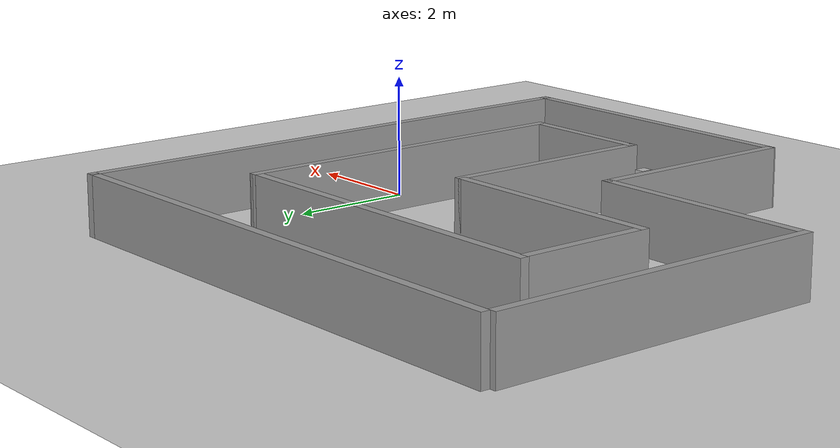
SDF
<sdf version="1.6">
 <world name="default">
  <model name="ground_plane">
   <static>1</static>
   <link name="link">
    <collision name="collision">
     <geometry><plane><normal>0 0 1</normal><size>100 100</size></plane></geometry>
     <surface><friction><ode><mu>100</mu><mu2>50</mu2></ode></friction></surface>
    </collision>
    <visual name="visual">
     <cast_shadows>0</cast_shadows>
     <geometry><plane><normal>0 0 1</normal><size>100 100</size></plane></geometry>
     <material>
      <script><uri>file://media/materials/scripts/gazebo.material</uri><name>Gazebo/Grey</name></script>
     </material>
    </visual>
   </link>
  </model>
  <light name="sun" type="directional">
   <pose>0 0 10 0 -0 0</pose>
   <diffuse>0.8 0.8 0.8 1</diffuse>
   <specular>0.1 0.1 0.1 1</specular>
   <attenuation>
    <range>1000</range>
    <constant>0.9</constant>
    <linear>0.01</linear>
    <quadratic>0.001</quadratic>
   </attenuation>
   <direction>-0.5 0.5 -1</direction>
  </light>
  <model name="box">
   <pose>-4.2462 -1.43825 0.5 0 -0 0</pose>
   <link name="link">
    <collision name="collision">
     <geometry><box><size>0.163139 0.194953 0.992557</size></box></geometry>
     <surface><contact><collide_without_contact>1</collide_without_contact></contact></surface>
    </collision>
    <visual name="visual"><geometry><box><size>0.163139 0.194953 0.992557</size></box></geometry></visual>
    <sensor name="my_contact" type="contact">
     <plugin name="my_plugin" filename="libcontact.so"/>
     <contact><collision>collision</collision></contact>
     <update_rate>1</update_rate>
    </sensor>
    <inertial>
     <inertia><ixx>1</ixx><ixy>0</ixy><ixz>0</ixz><iyy>1</iyy><iyz>0</iyz><izz>1</izz></inertia>
     <mass>1</mass>
    </inertial>
    <gravity>0</gravity>
   </link>
   <plugin name="model_push" filename="libmodel_push.so"/>
  </model>
  <joint name="box_maze_joint" type="fixed"><child>box</child><parent>simple_maze</parent></joint>
  <gravity>0 0 -9.8</gravity>
  <magnetic_field>6e-06 2.3e-05 -4.2e-05</magnetic_field>
  <atmosphere type="adiabatic"/>
  <physics name="default_physics" default="0" type="ode">
   <max_step_size>0.001</max_step_size>
   <real_time_factor>1</real_time_factor>
   <real_time_update_rate>1000</real_time_update_rate>
  </physics>
  <scene><ambient>0.4 0.4 0.4 1</ambient><background>0.7 0.7 0.7 1</background><shadows>1</shadows></scene>
  <spherical_coordinates>
   <surface_model>EARTH_WGS84</surface_model>
   <latitude_deg>0</latitude_deg>
   <longitude_deg>0</longitude_deg>
   <elevation>0</elevation>
   <heading_deg>0</heading_deg>
  </spherical_coordinates>
  <model name="Circuit_ql_2">
   <pose>-3.68816 0.572683 0 0 -0 0</pose>
   <link name="Wall_0">
    <collision name="Wall_0_Collision">
     <geometry><box><size>5.75 0.15 1</size></box></geometry>
     <pose>0 0 0.5 0 -0 0</pose>
    </collision>
    <visual name="Wall_0_Visual">
     <pose>0 0 0.5 0 -0 0</pose>
     <geometry><box><size>5.75 0.15 1</size></box></geometry>
     <material>
      <script><uri>file://media/materials/scripts/gazebo.material</uri><name>Gazebo/Grey</name></script>
      <ambient>1 1 1 1</ambient>
     </material>
    </visual>
    <pose>-4.6 1.725 0 0 0 -1.5708</pose>
   </link>
   <link name="Wall_1">
    <collision name="Wall_1_Collision">
     <geometry><box><size>4 0.15 1</size></box></geometry>
     <pose>0 0 0.5 0 -0 0</pose>
    </collision>
    <visual name="Wall_1_Visual">
     <pose>0 0 0.5 0 -0 0</pose>
     <geometry><box><size>4 0.15 1</size></box></geometry>
     <material>
      <script><uri>file://media/materials/scripts/gazebo.material</uri><name>Gazebo/Grey</name></script>
      <ambient>1 1 1 1</ambient>
     </material>
    </visual>
    <pose>-2.675 -1.075 0 0 -0 0</pose>
   </link>
   <link name="Wall_11">
    <collision name="Wall_11_Collision">
     <geometry><box><size>2.25 0.15 1</size></box></geometry>
     <pose>0 0 0.5 0 -0 0</pose>
    </collision>
    <visual name="Wall_11_Visual">
     <pose>0 0 0.5 0 -0 0</pose>
     <geometry><box><size>2.25 0.15 1</size></box></geometry>
     <material>
      <script><uri>file://media/materials/scripts/gazebo.material</uri><name>Gazebo/Grey</name></script>
      <ambient>1 1 1 1</ambient>
     </material>
    </visual>
    <pose>-3.036 1.559 0 0 0 -1.5708</pose>
   </link>
   <link name="Wall_12">
    <collision name="Wall_12_Collision">
     <geometry><box><size>4 0.15 1</size></box></geometry>
     <pose>0 0 0.5 0 -0 0</pose>
    </collision>
    <visual name="Wall_12_Visual">
     <pose>0 0 0.5 0 -0 0</pose>
     <geometry><box><size>4 0.15 1</size></box></geometry>
     <material>
      <script><uri>file://media/materials/scripts/gazebo.material</uri><name>Gazebo/Grey</name></script>
      <ambient>1 1 1 1</ambient>
     </material>
    </visual>
    <pose>-1.111 0.509 0 0 -0 0</pose>
   </link>
   <link name="Wall_13">
    <collision name="Wall_13_Collision">
     <geometry><box><size>3.75 0.15 1</size></box></geometry>
     <pose>0 0 0.5 0 -0 0</pose>
    </collision>
    <visual name="Wall_13_Visual">
     <pose>0 0 0.5 0 -0 0</pose>
     <geometry><box><size>3.75 0.15 1</size></box></geometry>
     <material>
      <script><uri>file://media/materials/scripts/gazebo.material</uri><name>Gazebo/Grey</name></script>
      <ambient>1 1 1 1</ambient>
     </material>
    </visual>
    <pose>0.814 -1.291 0 0 0 -1.5708</pose>
   </link>
   <link name="Wall_14">
    <collision name="Wall_14_Collision">
     <geometry><box><size>2.25 0.15 1</size></box></geometry>
     <pose>0 0 0.5 0 -0 0</pose>
    </collision>
    <visual name="Wall_14_Visual">
     <pose>0 0 0.5 0 -0 0</pose>
     <geometry><box><size>2.25 0.15 1</size></box></geometry>
     <material>
      <script><uri>file://media/materials/scripts/gazebo.material</uri><name>Gazebo/Grey</name></script>
      <ambient>1 1 1 1</ambient>
     </material>
    </visual>
    <pose>1.9 -3.091 0 0 -0 0</pose>
   </link>
   <link name="Wall_15">
    <collision name="Wall_15_Collision">
     <geometry><box><size>5.98502 0.15 1</size></box></geometry>
     <pose>0 0 0.5 0 -0 0</pose>
    </collision>
    <visual name="Wall_15_Visual">
     <pose>0 0 0.5 0 -0 0</pose>
     <geometry><box><size>5.98502 0.15 1</size></box></geometry>
     <material>
      <script><uri>file://media/materials/scripts/gazebo.material</uri><name>Gazebo/Grey</name></script>
      <ambient>1 1 1 1</ambient>
     </material>
    </visual>
    <pose>3.0215 -0.1735 0 0 -0 1.56823</pose>
   </link>
   <link name="Wall_16">
    <collision name="Wall_16_Collision">
     <geometry><box><size>6.2 0.15 1</size></box></geometry>
     <pose>0 0 0.5 0 -0 0</pose>
    </collision>
    <visual name="Wall_16_Visual">
     <pose>0 0 0.5 0 -0 0</pose>
     <geometry><box><size>6.2 0.15 1</size></box></geometry>
     <material>
      <script><uri>file://media/materials/scripts/gazebo.material</uri><name>Gazebo/Grey</name></script>
      <ambient>1 1 1 1</ambient>
     </material>
    </visual>
    <pose>-0.02 2.744 0 0 -0 3.14159</pose>
   </link>
   <link name="Wall_2">
    <collision name="Wall_2_Collision">
     <geometry><box><size>3.7 0.15 1</size></box></geometry>
     <pose>0 0 0.5 0 -0 0</pose>
    </collision>
    <visual name="Wall_2_Visual">
     <pose>0 0 0.5 0 -0 0</pose>
     <geometry><box><size>3.7 0.15 1</size></box></geometry>
     <material>
      <script><uri>file://media/materials/scripts/gazebo.material</uri><name>Gazebo/Grey</name></script>
      <ambient>1 1 1 1</ambient>
     </material>
    </visual>
    <pose>-0.75 -2.875 0 0 0 -1.5708</pose>
   </link>
   <link name="Wall_3">
    <collision name="Wall_3_Collision">
     <geometry><box><size>5.5 0.15 1</size></box></geometry>
     <pose>0 0 0.5 0 -0 0</pose>
    </collision>
    <visual name="Wall_3_Visual">
     <pose>0 0 0.5 0 -0 0</pose>
     <geometry><box><size>5.5 0.15 1</size></box></geometry>
     <material>
      <script><uri>file://media/materials/scripts/gazebo.material</uri><name>Gazebo/Grey</name></script>
      <ambient>1 1 1 1</ambient>
     </material>
    </visual>
    <pose>1.925 -4.675 0 0 -0 0</pose>
   </link>
   <link name="Wall_7">
    <collision name="Wall_7_Collision">
     <geometry><box><size>9.5 0.15 1</size></box></geometry>
     <pose>0 0 0.5 0 -0 0</pose>
    </collision>
    <visual name="Wall_7_Visual">
     <pose>0 0 0.5 0 -0 0</pose>
     <geometry><box><size>9.5 0.15 1</size></box></geometry>
     <material>
      <script><uri>file://media/materials/scripts/gazebo.material</uri><name>Gazebo/Grey</name></script>
      <ambient>1 1 1 1</ambient>
     </material>
    </visual>
    <pose>4.6 0 0 0 -0 1.5708</pose>
   </link>
   <link name="Wall_9">
    <collision name="Wall_9_Collision">
     <geometry><box><size>9.25 0.15 1</size></box></geometry>
     <pose>0 0 0.5 0 -0 0</pose>
    </collision>
    <visual name="Wall_9_Visual">
     <pose>0 0 0.5 0 -0 0</pose>
     <geometry><box><size>9.25 0.15 1</size></box></geometry>
     <material>
      <script><uri>file://media/materials/scripts/gazebo.material</uri><name>Gazebo/Grey</name></script>
      <ambient>1 1 1 1</ambient>
     </material>
    </visual>
    <pose>0.05 4.675 0 0 -0 3.14159</pose>
   </link>
   <static>1</static>
  </model>
 </world>
</sdf>
